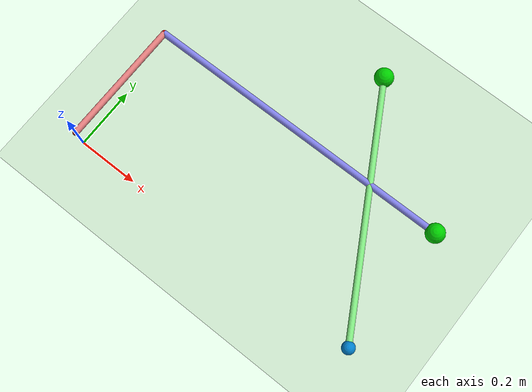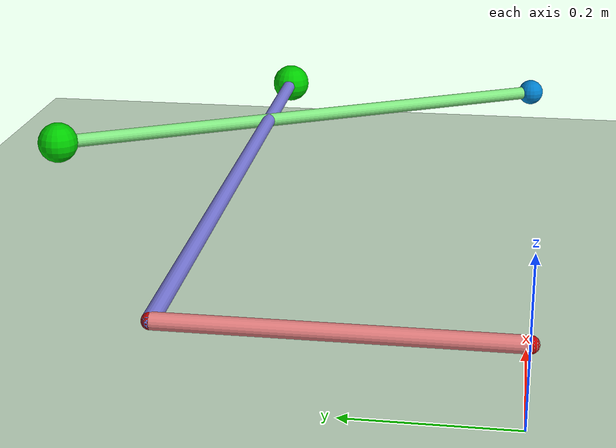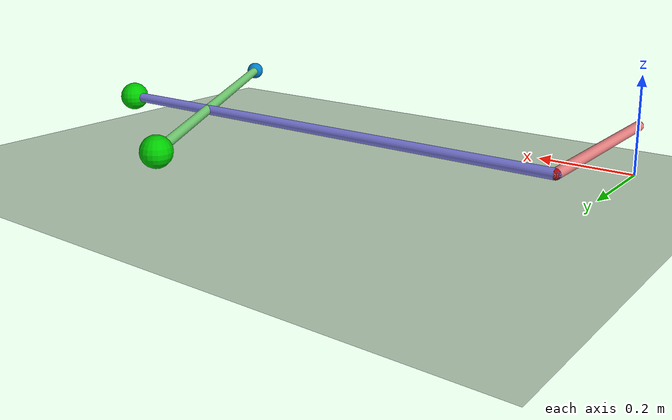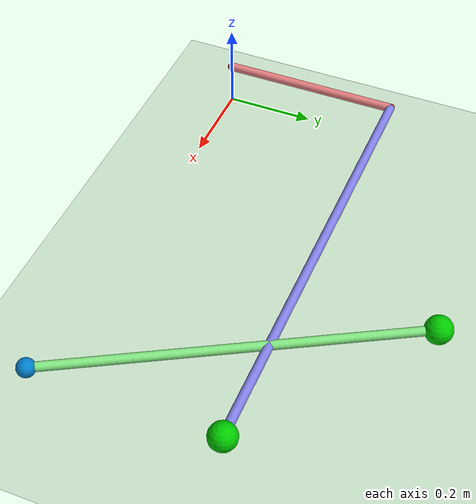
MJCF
<mujoco model="4-bar mechanism">
  <option timestep="0.002" gravity="0 0 -9.81"/>

  <visual>
    <rgba haze=".3 .3 .3 1"/>
    <headlight ambient=".1 .1 .1"/>
  </visual>

  <default>
    <!-- 기본 조인트 설정: 댐핑을 주어 움직임을 안정화 -->
    <joint damping="0.05" limited="false"/>
    <!-- 링크(캡슐)의 시각적 속성: 반지름 10mm(0.01m), Link2(0.4m)가 1kg이 되도록 밀도 설정 -->
    <geom type="capsule" size="0.01" density="7701.046" rgba="0.9 0.5 0.5 1"/>
    <!-- 사이트(연결점)의 시각적 속성 -->
    <site type="sphere" size="0.03" rgba="0 0.8 0 1"/>
  </default>

  <worldbody>
    <!-- 바닥 -->
    <geom name="floor" type="plane" size="2 2 0.1" rgba=".8 .9 .8 1"/>
    <light pos="0 0 3" dir="0 0 -1" diffuse="1 1 1"/>

    <!-- J1: 원점 (0,0) -->
    <!-- Link 2 (길이 400mm -> 0.4m) -->
    <body name="link2" pos="0 0 0.1">
      <joint name="J1" type="hinge" axis="0 0 1" pos="0 0 0"/>
      <!-- J1 반력 측정을 위한 사이트 -->
      <site name="site_J1" pos="0 0 0" size="0.01" rgba="0.8 0 0 1"/>

      <!-- 시각적 링크: J1(0,0,0)에서 J2(0,0.4,0)까지 -->
      <geom fromto="0 0 0  0 0.4 0" name="geom_link2"/>

      <!-- J2 위치 (Link 2의 끝) -->
      <!-- Link 3 (길이 1000mm -> 1.0m) -->
      <body name="link3" pos="0 0.4 0" euler="0 0 0.407">
        <joint name="J2" type="hinge" axis="0 0 1" pos="0 0 0"/>
        <!-- J2 반력 측정을 위한 사이트 -->
        <site name="site_J2" pos="0 0 0" size="0.01" rgba="0.8 0 0 1"/>

        <!-- 시각적 링크: J2(0,0,0)에서 J3가 될 지점(1.0, 0, 0)까지 -->
        <geom fromto="0 0 0  1.0 0 0" name="geom_link3" rgba="0.5 0.5 0.9 1"/>

        <!-- J3 연결을 위한 사이트 (Constraint용) -->
        <site name="site_J3_A" pos="1.0 0 0"/>
      </body>
    </body>

    <!-- J4: (1000mm, 0) -> (1.0m, 0) -->
    <!-- J4 Anchor Site (World) -->
    <site name="site_J4_Anchor" pos="1.0 0 0.1" size="0.02" rgba="0 0.5 0.8 1"/>

    <!-- Link 4 (길이 800mm -> 0.8m) -->
    <body name="link4" pos="1.0 0 0.1" euler="0 0 -0.422">
      <!-- J4 Reaction Force 측정을 위해 Hinge 대신 Free Joint + Constraint 사용 -->
      <freejoint name="J4_Free"/>
      <site name="site_J4_Link" pos="0 0 0" size="0.01"/>

      <!-- 시각적 링크: J4(0,0,0)에서 J3가 될 지점(-0.4, 0.6928, 0) -->
      <geom fromto="0 0 0  -0.4 0.6928 0" name="geom_link4" rgba="0.5 0.9 0.5 1"/>

      <!-- J3 연결을 위한 사이트 (Constraint용 - Link 4의 끝) -->
      <site name="site_J3_B" pos="-0.4 0.6928 0"/>
    </body>

  </worldbody>

  <!-- 루프 폐곡선 조건 (Loop Closure Constraint) -->
  <equality>
    <!-- J3 연결 (Link3 <-> Link4) -->
    <connect site1="site_J3_A" site2="site_J3_B"/>
    <!-- J4 연결 (World <-> Link4, Ball Joint 역할, 2D이므로 Hinge처럼 거동) -->
    <!-- 정확히 Hinge로 만들려면 Orientation Constraint도 필요하지만, 2D 평면 구속(z축)이 있다면 Connect만으로도 충분할 수 있음. -->
    <!-- 하지만 3D 공간이므로 Link4가 넘어질 수 있음. -->
    <!-- 간단히 Connect만 사용하여 Ball Joint처럼 만들고, 중력/시뮬레이션 안정성 확인 -->
    <connect name="J4_Constraint" site1="site_J4_Anchor" site2="site_J4_Link"/>
  </equality>

  <!-- Actuator: Velocity Control (RPM control) -->
  <actuator>
    <velocity name="motor_J1_vel" joint="J1" kv="10" ctrlrange="-20 20"/>
  </actuator>

  <sensor>
    <!-- J1: Velocity (rad/s) and Torque -->
    <!-- Note: MuJoCo native sensors output in SI units (rad/s). 1 rad/s approx 9.55 RPM -->
    <jointvel name="J1_Vel (rad/s)" joint="J1"/>
    <actuatorfrc name="J1_Torque (Nm)" actuator="motor_J1_vel"/>
    <force name="J1_Reaction (N)" site="site_J1"/>

    <!-- J2: Pos, Vel -->
    <framepos name="J2_Pos" objtype="body" objname="link3"/>
    <framelinvel name="J2_Vel" objtype="body" objname="link3"/>
    <force name="J2_Reaction (N)" site="site_J2"/>

    <!-- J3: Pos, Vel, Reaction Force -->
    <framepos name="J3_Pos" objtype="site" objname="site_J3_A"/>
    <framelinvel name="J3_Vel" objtype="site" objname="site_J3_A"/>
    <force name="J3_Reaction (N)" site="site_J3_A"/>

    <!-- J4: Reaction Force (Constraints) -->
    <force name="J4_Reaction (N)" site="site_J4_Anchor"/>
  </sensor>

</mujoco>
